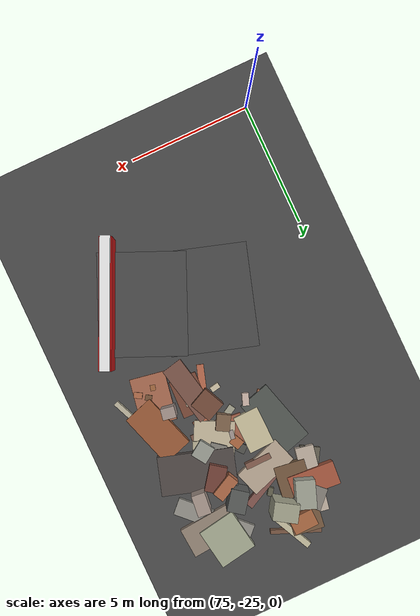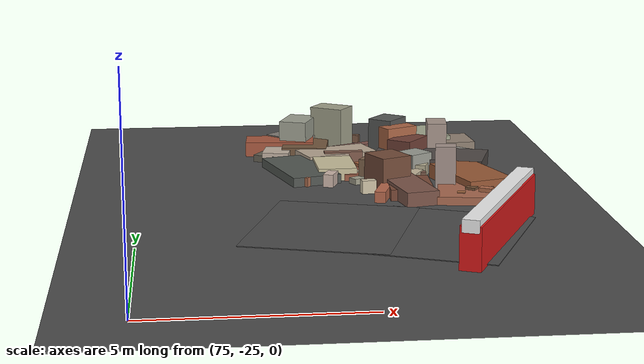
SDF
<sdf version="1.6">
 <world name="navitas_arena">
  <model name="ground_plane">
   <static>true</static>
   <link name="link">
    <collision name="collision">
     <geometry><plane><normal>0 0 1</normal><size>400 400</size></plane></geometry>
     <surface><friction><ode><mu>0.800</mu><mu2>0.800</mu2></ode></friction></surface>
    </collision>
    <visual name="visual">
     <cast_shadows>false</cast_shadows>
     <geometry><plane><normal>0 0 1</normal><size>400 400</size></plane></geometry>
     <material>
      <specular>0.04 0.04 0.04 1</specular>
      <script>
       <uri>file://media/materials/scripts/navitas_asphalt.material</uri>
       <name>Navitas/RealArenaAsphalt</name>
      </script>
     </material>
    </visual>
   </link>
  </model>
  <model name="road_zor_1_2">
   <static>true</static>
   <pose>82.078 -19.642 0.040 0 0 2.727</pose>
   <link name="link">
    <collision name="col"><geometry><box><size>3.580 4.200 0.020</size></box></geometry></collision>
    <visual name="vis">
     <geometry><box><size>3.580 4.200 0.020</size></box></geometry>
     <material>
      <specular>0.04 0.04 0.04 1</specular>
      <script>
       <uri>file://media/materials/scripts/navitas_asphalt.material</uri>
       <name>Navitas/RealArenaAsphalt</name>
      </script>
     </material>
    </visual>
   </link>
  </model>
  <model name="road_zor_1_3">
   <static>true</static>
   <pose>79.591 -18.702 0.040 0 0 2.835</pose>
   <link name="link">
    <collision name="col"><geometry><box><size>3.546 4.200 0.020</size></box></geometry></collision>
    <visual name="vis">
     <geometry><box><size>3.546 4.200 0.020</size></box></geometry>
     <material>
      <specular>0.04 0.04 0.04 1</specular>
      <script>
       <uri>file://media/materials/scripts/navitas_asphalt.material</uri>
       <name>Navitas/RealArenaAsphalt</name>
      </script>
     </material>
    </visual>
   </link>
  </model>
  <model name="bar_zor_1">
   <static>true</static>
   <pose>83.305 -20.182 0.500 0 0 4.271</pose>
   <link name="link">
    <collision name="col"><geometry><box><size>5.200 0.500 1.000</size></box></geometry></collision>
    <visual name="vis">
     <geometry><box><size>5.200 0.500 1.000</size></box></geometry>
     <material>
      <ambient>0.85 0.10 0.10 1</ambient>
      <diffuse>0.85 0.10 0.10 1</diffuse>
      <specular>0.04 0.04 0.04 1</specular>
     </material>
    </visual>
   </link>
  </model>
  <model name="bar_zor_1b">
   <static>true</static>
   <pose>83.305 -20.182 1.000 0 0 4.271</pose>
   <link name="link">
    <collision name="col"><geometry><box><size>5.200 0.400 0.300</size></box></geometry></collision>
    <visual name="vis">
     <geometry><box><size>5.200 0.400 0.300</size></box></geometry>
     <material>
      <ambient>0.95 0.95 0.95 1</ambient>
      <diffuse>0.95 0.95 0.95 1</diffuse>
      <specular>0.04 0.04 0.04 1</specular>
     </material>
    </visual>
   </link>
  </model>
  <model name="deb_zor_33">
   <static>true</static>
   <pose>82.163 -13.791 0.000 0 0 0</pose>
   <link name="link">
    <collision name="col_0">
     <pose>0.242 0.244 0.147 0.000 0.000 4.209</pose>
     <geometry><box><size>0.437 0.273 0.293</size></box></geometry>
    </collision>
    <visual name="vis_0">
     <pose>0.242 0.244 0.147 0.000 0.000 4.209</pose>
     <geometry><box><size>0.437 0.273 0.293</size></box></geometry>
     <material>
      <ambient>0.61 0.60 0.54 1</ambient>
      <diffuse>0.65 0.65 0.59 1</diffuse>
      <specular>0.05 0.05 0.045 1</specular>
     </material>
    </visual>
    <collision name="col_1">
     <pose>0.181 0.432 0.295 0.000 0.000 3.725</pose>
     <geometry><box><size>0.690 0.653 0.590</size></box></geometry>
    </collision>
    <visual name="vis_1">
     <pose>0.181 0.432 0.295 0.000 0.000 3.725</pose>
     <geometry><box><size>0.690 0.653 0.590</size></box></geometry>
     <material>
      <ambient>0.57 0.57 0.54 1</ambient>
      <diffuse>0.61 0.62 0.58 1</diffuse>
      <specular>0.05 0.05 0.045 1</specular>
     </material>
    </visual>
    <collision name="col_2">
     <pose>-0.437 -0.138 0.091 0.000 0.000 3.099</pose>
     <geometry><box><size>1.694 0.242 0.182</size></box></geometry>
    </collision>
    <visual name="vis_2">
     <pose>-0.437 -0.138 0.091 0.000 0.000 3.099</pose>
     <geometry><box><size>1.694 0.242 0.182</size></box></geometry>
     <material>
      <ambient>0.44 0.32 0.27 1</ambient>
      <diffuse>0.48 0.35 0.29 1</diffuse>
      <specular>0.05 0.05 0.045 1</specular>
     </material>
    </visual>
    <collision name="col_3">
     <pose>-0.390 0.250 0.108 0.000 0.000 2.684</pose>
     <geometry><box><size>1.627 1.511 0.216</size></box></geometry>
    </collision>
    <visual name="vis_3">
     <pose>-0.390 0.250 0.108 0.000 0.000 2.684</pose>
     <geometry><box><size>1.627 1.511 0.216</size></box></geometry>
     <material>
      <ambient>0.72 0.68 0.57 1</ambient>
      <diffuse>0.78 0.73 0.62 1</diffuse>
      <specular>0.05 0.05 0.045 1</specular>
     </material>
    </visual>
    <collision name="col_4">
     <pose>-0.032 -0.541 0.061 0.000 0.000 3.361</pose>
     <geometry><box><size>0.202 0.416 0.121</size></box></geometry>
    </collision>
    <visual name="vis_4">
     <pose>-0.032 -0.541 0.061 0.000 0.000 3.361</pose>
     <geometry><box><size>0.202 0.416 0.121</size></box></geometry>
     <material>
      <ambient>0.48 0.32 0.24 1</ambient>
      <diffuse>0.52 0.34 0.26 1</diffuse>
      <specular>0.05 0.05 0.045 1</specular>
     </material>
    </visual>
    <collision name="col_5">
     <pose>0.278 0.221 0.157 0.000 0.000 4.347</pose>
     <geometry><box><size>0.461 0.464 0.314</size></box></geometry>
    </collision>
    <visual name="vis_5">
     <pose>0.278 0.221 0.157 0.000 0.000 4.347</pose>
     <geometry><box><size>0.461 0.464 0.314</size></box></geometry>
     <material>
      <ambient>0.66 0.64 0.54 1</ambient>
      <diffuse>0.72 0.69 0.58 1</diffuse>
      <specular>0.05 0.05 0.045 1</specular>
     </material>
    </visual>
   </link>
  </model>
  <model name="deb_zor_73">
   <static>true</static>
   <pose>81.459 -15.122 0.000 0 0 0</pose>
   <link name="link">
    <collision name="col_0">
     <pose>-0.055 0.128 0.458 0.000 0.000 0.433</pose>
     <geometry><box><size>0.851 0.920 0.916</size></box></geometry>
    </collision>
    <visual name="vis_0">
     <pose>-0.055 0.128 0.458 0.000 0.000 0.433</pose>
     <geometry><box><size>0.851 0.920 0.916</size></box></geometry>
     <material>
      <ambient>0.42 0.28 0.21 1</ambient>
      <diffuse>0.46 0.30 0.23 1</diffuse>
      <specular>0.05 0.05 0.045 1</specular>
     </material>
    </visual>
    <collision name="col_1">
     <pose>-0.606 -0.301 0.173 0.000 0.000 1.752</pose>
     <geometry><box><size>0.213 0.374 0.345</size></box></geometry>
    </collision>
    <visual name="vis_1">
     <pose>-0.606 -0.301 0.173 0.000 0.000 1.752</pose>
     <geometry><box><size>0.213 0.374 0.345</size></box></geometry>
     <material>
      <ambient>0.76 0.71 0.61 1</ambient>
      <diffuse>0.82 0.77 0.66 1</diffuse>
      <specular>0.05 0.05 0.045 1</specular>
     </material>
    </visual>
    <collision name="col_2">
     <pose>0.615 -0.238 0.170 0.000 0.000 2.980</pose>
     <geometry><box><size>0.185 0.352 0.340</size></box></geometry>
    </collision>
    <visual name="vis_2">
     <pose>0.615 -0.238 0.170 0.000 0.000 2.980</pose>
     <geometry><box><size>0.185 0.352 0.340</size></box></geometry>
     <material>
      <ambient>0.71 0.65 0.57 1</ambient>
      <diffuse>0.77 0.70 0.61 1</diffuse>
      <specular>0.05 0.05 0.045 1</specular>
     </material>
    </visual>
    <collision name="col_3">
     <pose>0.442 -0.457 0.144 0.000 0.000 1.536</pose>
     <geometry><box><size>1.533 1.117 0.288</size></box></geometry>
    </collision>
    <visual name="vis_3">
     <pose>0.442 -0.457 0.144 0.000 0.000 1.536</pose>
     <geometry><box><size>1.533 1.117 0.288</size></box></geometry>
     <material>
      <ambient>0.44 0.27 0.20 1</ambient>
      <diffuse>0.48 0.29 0.22 1</diffuse>
      <specular>0.05 0.05 0.045 1</specular>
     </material>
    </visual>
    <collision name="col_4">
     <pose>-0.103 -0.313 0.143 0.000 0.000 1.261</pose>
     <geometry><box><size>2.238 0.283 0.285</size></box></geometry>
    </collision>
    <visual name="vis_4">
     <pose>-0.103 -0.313 0.143 0.000 0.000 1.261</pose>
     <geometry><box><size>2.238 0.283 0.285</size></box></geometry>
     <material>
      <ambient>0.67 0.39 0.29 1</ambient>
      <diffuse>0.73 0.42 0.31 1</diffuse>
      <specular>0.05 0.05 0.045 1</specular>
     </material>
    </visual>
    <collision name="col_5">
     <pose>0.337 -0.610 0.186 0.000 0.000 1.780</pose>
     <geometry><box><size>2.469 0.855 0.372</size></box></geometry>
    </collision>
    <visual name="vis_5">
     <pose>0.337 -0.610 0.186 0.000 0.000 1.780</pose>
     <geometry><box><size>2.469 0.855 0.372</size></box></geometry>
     <material>
      <ambient>0.45 0.32 0.27 1</ambient>
      <diffuse>0.49 0.34 0.29 1</diffuse>
      <specular>0.05 0.05 0.045 1</specular>
     </material>
    </visual>
   </link>
  </model>
  <model name="deb_zor_75">
   <static>true</static>
   <pose>79.167 -10.018 0.000 0 0 0</pose>
   <link name="link">
    <collision name="col_0">
     <pose>0.386 -0.243 0.164 0.000 0.000 1.057</pose>
     <geometry><box><size>1.870 0.299 0.328</size></box></geometry>
    </collision>
    <visual name="vis_0">
     <pose>0.386 -0.243 0.164 0.000 0.000 1.057</pose>
     <geometry><box><size>1.870 0.299 0.328</size></box></geometry>
     <material>
      <ambient>0.39 0.36 0.36 1</ambient>
      <diffuse>0.42 0.38 0.39 1</diffuse>
      <specular>0.05 0.05 0.045 1</specular>
     </material>
    </visual>
    <collision name="col_1">
     <pose>-0.252 -0.498 0.144 0.000 0.000 1.380</pose>
     <geometry><box><size>2.640 0.740 0.288</size></box></geometry>
    </collision>
    <visual name="vis_1">
     <pose>-0.252 -0.498 0.144 0.000 0.000 1.380</pose>
     <geometry><box><size>2.640 0.740 0.288</size></box></geometry>
     <material>
      <ambient>0.70 0.64 0.58 1</ambient>
      <diffuse>0.75 0.69 0.63 1</diffuse>
      <specular>0.05 0.05 0.045 1</specular>
     </material>
    </visual>
    <collision name="col_2">
     <pose>0.091 0.005 0.217 0.000 0.000 2.367</pose>
     <geometry><box><size>1.149 0.900 0.435</size></box></geometry>
    </collision>
    <visual name="vis_2">
     <pose>0.091 0.005 0.217 0.000 0.000 2.367</pose>
     <geometry><box><size>1.149 0.900 0.435</size></box></geometry>
     <material>
      <ambient>0.48 0.46 0.43 1</ambient>
      <diffuse>0.52 0.50 0.47 1</diffuse>
      <specular>0.05 0.05 0.045 1</specular>
     </material>
    </visual>
    <collision name="col_3">
     <pose>0.524 -0.075 0.170 0.000 0.000 1.431</pose>
     <geometry><box><size>2.798 1.251 0.341</size></box></geometry>
    </collision>
    <visual name="vis_3">
     <pose>0.524 -0.075 0.170 0.000 0.000 1.431</pose>
     <geometry><box><size>2.798 1.251 0.341</size></box></geometry>
     <material>
      <ambient>0.42 0.33 0.24 1</ambient>
      <diffuse>0.46 0.35 0.25 1</diffuse>
      <specular>0.05 0.05 0.045 1</specular>
     </material>
    </visual>
    <collision name="col_4">
     <pose>0.256 -0.238 0.475 0.000 0.000 1.209</pose>
     <geometry><box><size>1.131 0.774 0.950</size></box></geometry>
    </collision>
    <visual name="vis_4">
     <pose>0.256 -0.238 0.475 0.000 0.000 1.209</pose>
     <geometry><box><size>1.131 0.774 0.950</size></box></geometry>
     <material>
      <ambient>0.58 0.59 0.54 1</ambient>
      <diffuse>0.63 0.64 0.58 1</diffuse>
      <specular>0.05 0.05 0.045 1</specular>
     </material>
    </visual>
    <collision name="col_5">
     <pose>-0.286 -0.445 0.200 0.000 0.000 -0.081</pose>
     <geometry><box><size>1.915 0.929 0.401</size></box></geometry>
    </collision>
    <visual name="vis_5">
     <pose>-0.286 -0.445 0.200 0.000 0.000 -0.081</pose>
     <geometry><box><size>1.915 0.929 0.401</size></box></geometry>
     <material>
      <ambient>0.61 0.32 0.23 1</ambient>
      <diffuse>0.66 0.35 0.25 1</diffuse>
      <specular>0.05 0.05 0.045 1</specular>
     </material>
    </visual>
   </link>
  </model>
  <model name="deb_zor_122">
   <static>true</static>
   <pose>81.073 -11.390 0.000 0 0 0</pose>
   <link name="link">
    <collision name="col_0">
     <pose>-0.698 -0.345 0.160 0.000 0.000 0.323</pose>
     <geometry><box><size>2.041 1.064 0.319</size></box></geometry>
    </collision>
    <visual name="vis_0">
     <pose>-0.698 -0.345 0.160 0.000 0.000 0.323</pose>
     <geometry><box><size>2.041 1.064 0.319</size></box></geometry>
     <material>
      <ambient>0.68 0.62 0.54 1</ambient>
      <diffuse>0.73 0.66 0.58 1</diffuse>
      <specular>0.05 0.05 0.045 1</specular>
     </material>
    </visual>
    <collision name="col_1">
     <pose>-0.525 -0.685 0.182 0.000 0.000 0.012</pose>
     <geometry><box><size>1.062 0.231 0.365</size></box></geometry>
    </collision>
    <visual name="vis_1">
     <pose>-0.525 -0.685 0.182 0.000 0.000 0.012</pose>
     <geometry><box><size>1.062 0.231 0.365</size></box></geometry>
     <material>
      <ambient>0.48 0.35 0.29 1</ambient>
      <diffuse>0.52 0.37 0.31 1</diffuse>
      <specular>0.05 0.05 0.045 1</specular>
     </material>
    </visual>
    <collision name="col_2">
     <pose>0.164 -0.283 0.068 0.000 0.000 -0.279</pose>
     <geometry><box><size>0.305 0.285 0.137</size></box></geometry>
    </collision>
    <visual name="vis_2">
     <pose>0.164 -0.283 0.068 0.000 0.000 -0.279</pose>
     <geometry><box><size>0.305 0.285 0.137</size></box></geometry>
     <material>
      <ambient>0.70 0.65 0.56 1</ambient>
      <diffuse>0.76 0.71 0.61 1</diffuse>
      <specular>0.05 0.05 0.045 1</specular>
     </material>
    </visual>
    <collision name="col_3">
     <pose>-0.338 0.339 0.150 0.000 0.000 0.460</pose>
     <geometry><box><size>1.986 0.309 0.301</size></box></geometry>
    </collision>
    <visual name="vis_3">
     <pose>-0.338 0.339 0.150 0.000 0.000 0.460</pose>
     <geometry><box><size>1.986 0.309 0.301</size></box></geometry>
     <material>
      <ambient>0.47 0.32 0.29 1</ambient>
      <diffuse>0.51 0.34 0.31 1</diffuse>
      <specular>0.05 0.05 0.045 1</specular>
     </material>
    </visual>
    <collision name="col_4">
     <pose>0.800 -0.330 0.142 0.000 0.000 1.362</pose>
     <geometry><box><size>2.300 0.251 0.284</size></box></geometry>
    </collision>
    <visual name="vis_4">
     <pose>0.800 -0.330 0.142 0.000 0.000 1.362</pose>
     <geometry><box><size>2.300 0.251 0.284</size></box></geometry>
     <material>
      <ambient>0.60 0.56 0.53 1</ambient>
      <diffuse>0.65 0.61 0.57 1</diffuse>
      <specular>0.05 0.05 0.045 1</specular>
     </material>
    </visual>
    <collision name="col_5">
     <pose>-0.186 0.025 0.071 0.000 0.000 1.191</pose>
     <geometry><box><size>0.519 0.294 0.142</size></box></geometry>
    </collision>
    <visual name="vis_5">
     <pose>-0.186 0.025 0.071 0.000 0.000 1.191</pose>
     <geometry><box><size>0.519 0.294 0.142</size></box></geometry>
     <material>
      <ambient>0.59 0.34 0.23 1</ambient>
      <diffuse>0.63 0.36 0.24 1</diffuse>
      <specular>0.05 0.05 0.045 1</specular>
     </material>
    </visual>
    <collision name="col_6">
     <pose>-0.457 0.655 0.110 0.000 0.000 0.938</pose>
     <geometry><box><size>0.340 0.207 0.220</size></box></geometry>
    </collision>
    <visual name="vis_6">
     <pose>-0.457 0.655 0.110 0.000 0.000 0.938</pose>
     <geometry><box><size>0.340 0.207 0.220</size></box></geometry>
     <material>
      <ambient>0.36 0.35 0.29 1</ambient>
      <diffuse>0.39 0.38 0.31 1</diffuse>
      <specular>0.05 0.05 0.045 1</specular>
     </material>
    </visual>
   </link>
  </model>
  <model name="deb_zor_152">
   <static>true</static>
   <pose>80.755 -13.940 0.000 0 0 0</pose>
   <link name="link">
    <collision name="col_0">
     <pose>0.389 -0.123 0.308 0.000 0.000 1.045</pose>
     <geometry><box><size>0.656 0.557 0.615</size></box></geometry>
    </collision>
    <visual name="vis_0">
     <pose>0.389 -0.123 0.308 0.000 0.000 1.045</pose>
     <geometry><box><size>0.656 0.557 0.615</size></box></geometry>
     <material>
      <ambient>0.47 0.36 0.27 1</ambient>
      <diffuse>0.50 0.39 0.30 1</diffuse>
      <specular>0.05 0.05 0.045 1</specular>
     </material>
    </visual>
    <collision name="col_1">
     <pose>-0.043 -0.406 0.077 0.000 0.000 2.098</pose>
     <geometry><box><size>0.279 0.384 0.155</size></box></geometry>
    </collision>
    <visual name="vis_1">
     <pose>-0.043 -0.406 0.077 0.000 0.000 2.098</pose>
     <geometry><box><size>0.279 0.384 0.155</size></box></geometry>
     <material>
      <ambient>0.61 0.59 0.52 1</ambient>
      <diffuse>0.65 0.64 0.56 1</diffuse>
      <specular>0.05 0.05 0.045 1</specular>
     </material>
    </visual>
    <collision name="col_2">
     <pose>0.288 0.492 0.141 0.000 0.000 1.433</pose>
     <geometry><box><size>0.361 0.182 0.281</size></box></geometry>
    </collision>
    <visual name="vis_2">
     <pose>0.288 0.492 0.141 0.000 0.000 1.433</pose>
     <geometry><box><size>0.361 0.182 0.281</size></box></geometry>
     <material>
      <ambient>0.60 0.54 0.53 1</ambient>
      <diffuse>0.64 0.59 0.57 1</diffuse>
      <specular>0.05 0.05 0.045 1</specular>
     </material>
    </visual>
    <collision name="col_3">
     <pose>0.580 0.324 0.088 0.000 0.000 3.022</pose>
     <geometry><box><size>1.782 1.160 0.176</size></box></geometry>
    </collision>
    <visual name="vis_3">
     <pose>0.580 0.324 0.088 0.000 0.000 3.022</pose>
     <geometry><box><size>1.782 1.160 0.176</size></box></geometry>
     <material>
      <ambient>0.59 0.36 0.27 1</ambient>
      <diffuse>0.64 0.38 0.29 1</diffuse>
      <specular>0.05 0.05 0.045 1</specular>
     </material>
    </visual>
   </link>
  </model>
  <model name="deb_zor_196">
   <static>true</static>
   <pose>83.380 -15.861 0.000 0 0 0</pose>
   <link name="link">
    <collision name="col_0">
     <pose>-0.509 0.497 0.596 0.000 0.000 2.965</pose>
     <geometry><box><size>0.535 0.438 1.192</size></box></geometry>
    </collision>
    <visual name="vis_0">
     <pose>-0.509 0.497 0.596 0.000 0.000 2.965</pose>
     <geometry><box><size>0.535 0.438 1.192</size></box></geometry>
     <material>
      <ambient>0.60 0.54 0.51 1</ambient>
      <diffuse>0.65 0.58 0.55 1</diffuse>
      <specular>0.05 0.05 0.045 1</specular>
     </material>
    </visual>
    <collision name="col_1">
     <pose>-0.286 -0.593 0.114 0.000 0.000 1.315</pose>
     <geometry><box><size>0.231 0.207 0.228</size></box></geometry>
    </collision>
    <visual name="vis_1">
     <pose>-0.286 -0.593 0.114 0.000 0.000 1.315</pose>
     <geometry><box><size>0.231 0.207 0.228</size></box></geometry>
     <material>
      <ambient>0.59 0.38 0.24 1</ambient>
      <diffuse>0.64 0.41 0.25 1</diffuse>
      <specular>0.05 0.05 0.045 1</specular>
     </material>
    </visual>
    <collision name="col_2">
     <pose>0.364 -0.569 0.158 0.000 0.000 1.039</pose>
     <geometry><box><size>0.236 0.344 0.316</size></box></geometry>
    </collision>
    <visual name="vis_2">
     <pose>0.364 -0.569 0.158 0.000 0.000 1.039</pose>
     <geometry><box><size>0.236 0.344 0.316</size></box></geometry>
     <material>
      <ambient>0.65 0.40 0.28 1</ambient>
      <diffuse>0.70 0.43 0.30 1</diffuse>
      <specular>0.05 0.05 0.045 1</specular>
     </material>
    </visual>
    <collision name="col_3">
     <pose>0.869 0.363 0.133 0.000 0.000 1.968</pose>
     <geometry><box><size>2.221 0.204 0.265</size></box></geometry>
    </collision>
    <visual name="vis_3">
     <pose>0.869 0.363 0.133 0.000 0.000 1.968</pose>
     <geometry><box><size>2.221 0.204 0.265</size></box></geometry>
     <material>
      <ambient>0.70 0.66 0.58 1</ambient>
      <diffuse>0.75 0.72 0.63 1</diffuse>
      <specular>0.05 0.05 0.045 1</specular>
     </material>
    </visual>
    <collision name="col_4">
     <pose>-0.098 -0.164 0.107 0.000 0.000 1.394</pose>
     <geometry><box><size>1.971 1.432 0.213</size></box></geometry>
    </collision>
    <visual name="vis_4">
     <pose>-0.098 -0.164 0.107 0.000 0.000 1.394</pose>
     <geometry><box><size>1.971 1.432 0.213</size></box></geometry>
     <material>
      <ambient>0.62 0.39 0.30 1</ambient>
      <diffuse>0.67 0.42 0.32 1</diffuse>
      <specular>0.05 0.05 0.045 1</specular>
     </material>
    </visual>
    <collision name="col_5">
     <pose>0.250 1.031 0.194 0.000 0.000 1.884</pose>
     <geometry><box><size>2.303 1.257 0.388</size></box></geometry>
    </collision>
    <visual name="vis_5">
     <pose>0.250 1.031 0.194 0.000 0.000 1.884</pose>
     <geometry><box><size>2.303 1.257 0.388</size></box></geometry>
     <material>
      <ambient>0.56 0.33 0.20 1</ambient>
      <diffuse>0.61 0.36 0.22 1</diffuse>
      <specular>0.05 0.05 0.045 1</specular>
     </material>
    </visual>
    <collision name="col_6">
     <pose>0.030 -0.307 0.138 0.000 0.000 0.979</pose>
     <geometry><box><size>0.225 0.270 0.276</size></box></geometry>
    </collision>
    <visual name="vis_6">
     <pose>0.030 -0.307 0.138 0.000 0.000 0.979</pose>
     <geometry><box><size>0.225 0.270 0.276</size></box></geometry>
     <material>
      <ambient>0.44 0.31 0.21 1</ambient>
      <diffuse>0.47 0.33 0.22 1</diffuse>
      <specular>0.05 0.05 0.045 1</specular>
     </material>
    </visual>
   </link>
  </model>
  <model name="deb_zor_197">
   <static>true</static>
   <pose>79.930 -13.820 0.000 0 0 0</pose>
   <link name="link">
    <collision name="col_0">
     <pose>0.031 -0.669 0.168 0.000 0.000 1.211</pose>
     <geometry><box><size>0.506 0.265 0.337</size></box></geometry>
    </collision>
    <visual name="vis_0">
     <pose>0.031 -0.669 0.168 0.000 0.000 1.211</pose>
     <geometry><box><size>0.506 0.265 0.337</size></box></geometry>
     <material>
      <ambient>0.75 0.67 0.62 1</ambient>
      <diffuse>0.81 0.72 0.67 1</diffuse>
      <specular>0.05 0.05 0.045 1</specular>
     </material>
    </visual>
    <collision name="col_1">
     <pose>1.069 0.726 0.127 0.000 0.000 0.445</pose>
     <geometry><box><size>0.397 0.454 0.255</size></box></geometry>
    </collision>
    <visual name="vis_1">
     <pose>1.069 0.726 0.127 0.000 0.000 0.445</pose>
     <geometry><box><size>0.397 0.454 0.255</size></box></geometry>
     <material>
      <ambient>0.63 0.38 0.24 1</ambient>
      <diffuse>0.68 0.41 0.26 1</diffuse>
      <specular>0.05 0.05 0.045 1</specular>
     </material>
    </visual>
    <collision name="col_2">
     <pose>-0.663 0.572 0.123 0.000 0.000 1.847</pose>
     <geometry><box><size>2.564 1.324 0.246</size></box></geometry>
    </collision>
    <visual name="vis_2">
     <pose>-0.663 0.572 0.123 0.000 0.000 1.847</pose>
     <geometry><box><size>2.564 1.324 0.246</size></box></geometry>
     <material>
      <ambient>0.30 0.32 0.30 1</ambient>
      <diffuse>0.33 0.35 0.33 1</diffuse>
      <specular>0.05 0.05 0.045 1</specular>
     </material>
    </visual>
    <collision name="col_3">
     <pose>-0.592 -0.565 0.122 0.000 0.000 2.456</pose>
     <geometry><box><size>0.337 0.398 0.244</size></box></geometry>
    </collision>
    <visual name="vis_3">
     <pose>-0.592 -0.565 0.122 0.000 0.000 2.456</pose>
     <geometry><box><size>0.337 0.398 0.244</size></box></geometry>
     <material>
      <ambient>0.64 0.40 0.30 1</ambient>
      <diffuse>0.69 0.44 0.32 1</diffuse>
      <specular>0.05 0.05 0.045 1</specular>
     </material>
    </visual>
    <collision name="col_4">
     <pose>-0.718 0.463 0.086 0.000 0.000 0.661</pose>
     <geometry><box><size>0.279 0.307 0.173</size></box></geometry>
    </collision>
    <visual name="vis_4">
     <pose>-0.718 0.463 0.086 0.000 0.000 0.661</pose>
     <geometry><box><size>0.279 0.307 0.173</size></box></geometry>
     <material>
      <ambient>0.60 0.31 0.23 1</ambient>
      <diffuse>0.65 0.34 0.24 1</diffuse>
      <specular>0.05 0.05 0.045 1</specular>
     </material>
    </visual>
   </link>
  </model>
  <model name="deb_zor_206">
   <static>true</static>
   <pose>80.351 -10.160 0.000 0 0 0</pose>
   <link name="link">
    <collision name="col_0">
     <pose>-1.184 -0.296 0.094 0.000 0.000 1.033</pose>
     <geometry><box><size>2.898 0.805 0.188</size></box></geometry>
    </collision>
    <visual name="vis_0">
     <pose>-1.184 -0.296 0.094 0.000 0.000 1.033</pose>
     <geometry><box><size>2.898 0.805 0.188</size></box></geometry>
     <material>
      <ambient>0.37 0.35 0.30 1</ambient>
      <diffuse>0.40 0.38 0.33 1</diffuse>
      <specular>0.05 0.05 0.045 1</specular>
     </material>
    </visual>
    <collision name="col_1">
     <pose>-1.086 -0.281 0.065 0.000 0.000 0.699</pose>
     <geometry><box><size>1.807 0.179 0.130</size></box></geometry>
    </collision>
    <visual name="vis_1">
     <pose>-1.086 -0.281 0.065 0.000 0.000 0.699</pose>
     <geometry><box><size>1.807 0.179 0.130</size></box></geometry>
     <material>
      <ambient>0.62 0.36 0.26 1</ambient>
      <diffuse>0.67 0.38 0.28 1</diffuse>
      <specular>0.05 0.05 0.045 1</specular>
     </material>
    </visual>
    <collision name="col_2">
     <pose>0.177 1.142 0.144 0.000 0.000 -1.123</pose>
     <geometry><box><size>1.851 0.246 0.289</size></box></geometry>
    </collision>
    <visual name="vis_2">
     <pose>0.177 1.142 0.144 0.000 0.000 -1.123</pose>
     <geometry><box><size>1.851 0.246 0.289</size></box></geometry>
     <material>
      <ambient>0.72 0.69 0.59 1</ambient>
      <diffuse>0.78 0.75 0.63 1</diffuse>
      <specular>0.05 0.05 0.045 1</specular>
     </material>
    </visual>
    <collision name="col_3">
     <pose>0.009 1.257 0.110 0.000 0.000 -0.393</pose>
     <geometry><box><size>2.028 0.166 0.221</size></box></geometry>
    </collision>
    <visual name="vis_3">
     <pose>0.009 1.257 0.110 0.000 0.000 -0.393</pose>
     <geometry><box><size>2.028 0.166 0.221</size></box></geometry>
     <material>
      <ambient>0.44 0.32 0.24 1</ambient>
      <diffuse>0.47 0.34 0.26 1</diffuse>
      <specular>0.05 0.05 0.045 1</specular>
     </material>
    </visual>
    <collision name="col_4">
     <pose>0.058 0.114 0.622 0.000 0.000 -0.573</pose>
     <geometry><box><size>0.981 0.722 1.243</size></box></geometry>
    </collision>
    <visual name="vis_4">
     <pose>0.058 0.114 0.622 0.000 0.000 -0.573</pose>
     <geometry><box><size>0.981 0.722 1.243</size></box></geometry>
     <material>
      <ambient>0.59 0.59 0.51 1</ambient>
      <diffuse>0.64 0.64 0.55 1</diffuse>
      <specular>0.05 0.05 0.045 1</specular>
     </material>
    </visual>
    <collision name="col_5">
     <pose>-0.913 0.602 0.146 0.000 0.000 -0.834</pose>
     <geometry><box><size>0.478 0.476 0.292</size></box></geometry>
    </collision>
    <visual name="vis_5">
     <pose>-0.913 0.602 0.146 0.000 0.000 -0.834</pose>
     <geometry><box><size>0.478 0.476 0.292</size></box></geometry>
     <material>
      <ambient>0.35 0.31 0.31 1</ambient>
      <diffuse>0.38 0.34 0.34 1</diffuse>
      <specular>0.05 0.05 0.045 1</specular>
     </material>
    </visual>
    <collision name="col_6">
     <pose>-0.405 0.907 0.343 0.000 0.000 0.029</pose>
     <geometry><box><size>0.982 0.641 0.687</size></box></geometry>
    </collision>
    <visual name="vis_6">
     <pose>-0.405 0.907 0.343 0.000 0.000 0.029</pose>
     <geometry><box><size>0.982 0.641 0.687</size></box></geometry>
     <material>
      <ambient>0.62 0.38 0.24 1</ambient>
      <diffuse>0.67 0.41 0.26 1</diffuse>
      <specular>0.05 0.05 0.045 1</specular>
     </material>
    </visual>
   </link>
  </model>
  <model name="deb_zor_275">
   <static>true</static>
   <pose>80.310 -12.988 0.000 0 0 0</pose>
   <link name="link">
    <collision name="col_0">
     <pose>0.000 -0.750 0.084 0.000 0.000 2.757</pose>
     <geometry><box><size>1.975 0.302 0.168</size></box></geometry>
    </collision>
    <visual name="vis_0">
     <pose>0.000 -0.750 0.084 0.000 0.000 2.757</pose>
     <geometry><box><size>1.975 0.302 0.168</size></box></geometry>
     <material>
      <ambient>0.56 0.54 0.45 1</ambient>
      <diffuse>0.60 0.58 0.49 1</diffuse>
      <specular>0.05 0.05 0.045 1</specular>
     </material>
    </visual>
    <collision name="col_1">
     <pose>-0.123 -0.267 0.162 0.000 0.000 1.593</pose>
     <geometry><box><size>1.528 1.032 0.325</size></box></geometry>
    </collision>
    <visual name="vis_1">
     <pose>-0.123 -0.267 0.162 0.000 0.000 1.593</pose>
     <geometry><box><size>1.528 1.032 0.325</size></box></geometry>
     <material>
      <ambient>0.74 0.71 0.58 1</ambient>
      <diffuse>0.80 0.76 0.62 1</diffuse>
      <specular>0.05 0.05 0.045 1</specular>
     </material>
    </visual>
    <collision name="col_2">
     <pose>-0.076 0.001 0.132 0.000 0.000 1.004</pose>
     <geometry><box><size>1.057 0.252 0.264</size></box></geometry>
    </collision>
    <visual name="vis_2">
     <pose>-0.076 0.001 0.132 0.000 0.000 1.004</pose>
     <geometry><box><size>1.057 0.252 0.264</size></box></geometry>
     <material>
      <ambient>0.31 0.30 0.30 1</ambient>
      <diffuse>0.34 0.32 0.32 1</diffuse>
      <specular>0.05 0.05 0.045 1</specular>
     </material>
    </visual>
    <collision name="col_3">
     <pose>0.632 0.186 0.077 0.000 0.000 2.269</pose>
     <geometry><box><size>0.421 0.365 0.154</size></box></geometry>
    </collision>
    <visual name="vis_3">
     <pose>0.632 0.186 0.077 0.000 0.000 2.269</pose>
     <geometry><box><size>0.421 0.365 0.154</size></box></geometry>
     <material>
      <ambient>0.29 0.29 0.28 1</ambient>
      <diffuse>0.32 0.32 0.30 1</diffuse>
      <specular>0.05 0.05 0.045 1</specular>
     </material>
    </visual>
   </link>
  </model>
  <model name="deb_zor_294">
   <static>true</static>
   <pose>82.385 -12.243 0.000 0 0 0</pose>
   <link name="link">
    <collision name="col_0">
     <pose>-0.491 1.083 0.554 0.000 0.000 2.490</pose>
     <geometry><box><size>0.710 0.881 1.109</size></box></geometry>
    </collision>
    <visual name="vis_0">
     <pose>-0.491 1.083 0.554 0.000 0.000 2.490</pose>
     <geometry><box><size>0.710 0.881 1.109</size></box></geometry>
     <material>
      <ambient>0.32 0.33 0.32 1</ambient>
      <diffuse>0.35 0.36 0.35 1</diffuse>
      <specular>0.05 0.05 0.045 1</specular>
     </material>
    </visual>
    <collision name="col_1">
     <pose>0.503 -0.468 0.194 0.000 0.000 2.839</pose>
     <geometry><box><size>3.040 1.551 0.389</size></box></geometry>
    </collision>
    <visual name="vis_1">
     <pose>0.503 -0.468 0.194 0.000 0.000 2.839</pose>
     <geometry><box><size>3.040 1.551 0.389</size></box></geometry>
     <material>
      <ambient>0.30 0.27 0.26 1</ambient>
      <diffuse>0.32 0.29 0.28 1</diffuse>
      <specular>0.05 0.05 0.045 1</specular>
     </material>
    </visual>
    <collision name="col_2">
     <pose>-0.052 0.031 0.371 0.000 0.000 4.071</pose>
     <geometry><box><size>1.058 0.700 0.741</size></box></geometry>
    </collision>
    <visual name="vis_2">
     <pose>-0.052 0.031 0.371 0.000 0.000 4.071</pose>
     <geometry><box><size>1.058 0.700 0.741</size></box></geometry>
     <material>
      <ambient>0.42 0.24 0.20 1</ambient>
      <diffuse>0.45 0.26 0.22 1</diffuse>
      <specular>0.05 0.05 0.045 1</specular>
     </material>
    </visual>
    <collision name="col_3">
     <pose>0.839 0.598 0.539 0.000 0.000 3.039</pose>
     <geometry><box><size>0.534 0.841 1.077</size></box></geometry>
    </collision>
    <visual name="vis_3">
     <pose>0.839 0.598 0.539 0.000 0.000 3.039</pose>
     <geometry><box><size>0.534 0.841 1.077</size></box></geometry>
     <material>
      <ambient>0.61 0.55 0.51 1</ambient>
      <diffuse>0.66 0.59 0.55 1</diffuse>
      <specular>0.05 0.05 0.045 1</specular>
     </material>
    </visual>
    <collision name="col_4">
     <pose>-0.453 -0.734 0.175 0.000 0.000 2.469</pose>
     <geometry><box><size>0.656 0.903 0.351</size></box></geometry>
    </collision>
    <visual name="vis_4">
     <pose>-0.453 -0.734 0.175 0.000 0.000 2.469</pose>
     <geometry><box><size>0.656 0.903 0.351</size></box></geometry>
     <material>
      <ambient>0.47 0.46 0.44 1</ambient>
      <diffuse>0.51 0.50 0.47 1</diffuse>
      <specular>0.05 0.05 0.045 1</specular>
     </material>
    </visual>
    <collision name="col_5">
     <pose>0.185 -1.154 0.067 0.000 0.000 3.610</pose>
     <geometry><box><size>2.136 0.137 0.133</size></box></geometry>
    </collision>
    <visual name="vis_5">
     <pose>0.185 -1.154 0.067 0.000 0.000 3.610</pose>
     <geometry><box><size>2.136 0.137 0.133</size></box></geometry>
     <material>
      <ambient>0.56 0.31 0.22 1</ambient>
      <diffuse>0.61 0.33 0.24 1</diffuse>
      <specular>0.05 0.05 0.045 1</specular>
     </material>
    </visual>
    <collision name="col_6">
     <pose>-0.278 0.434 0.494 0.000 0.000 3.609</pose>
     <geometry><box><size>0.963 0.464 0.988</size></box></geometry>
    </collision>
    <visual name="vis_6">
     <pose>-0.278 0.434 0.494 0.000 0.000 3.609</pose>
     <geometry><box><size>0.963 0.464 0.988</size></box></geometry>
     <material>
      <ambient>0.63 0.38 0.26 1</ambient>
      <diffuse>0.68 0.41 0.28 1</diffuse>
      <specular>0.05 0.05 0.045 1</specular>
     </material>
    </visual>
   </link>
  </model>
  <model name="deb_zor_335">
   <static>true</static>
   <pose>83.417 -10.218 0.000 0 0 0</pose>
   <link name="link">
    <collision name="col_0">
     <pose>-0.013 -0.136 0.141 0.000 0.000 0.077</pose>
     <geometry><box><size>2.087 1.199 0.281</size></box></geometry>
    </collision>
    <visual name="vis_0">
     <pose>-0.013 -0.136 0.141 0.000 0.000 0.077</pose>
     <geometry><box><size>2.087 1.199 0.281</size></box></geometry>
     <material>
      <ambient>0.54 0.48 0.42 1</ambient>
      <diffuse>0.58 0.52 0.46 1</diffuse>
      <specular>0.05 0.05 0.045 1</specular>
     </material>
    </visual>
    <collision name="col_1">
     <pose>0.204 0.276 0.084 0.000 0.000 2.164</pose>
     <geometry><box><size>1.911 0.304 0.168</size></box></geometry>
    </collision>
    <visual name="vis_1">
     <pose>0.204 0.276 0.084 0.000 0.000 2.164</pose>
     <geometry><box><size>1.911 0.304 0.168</size></box></geometry>
     <material>
      <ambient>0.47 0.47 0.45 1</ambient>
      <diffuse>0.51 0.50 0.48 1</diffuse>
      <specular>0.05 0.05 0.045 1</specular>
     </material>
    </visual>
    <collision name="col_2">
     <pose>-0.462 0.415 0.198 0.000 0.000 1.733</pose>
     <geometry><box><size>1.625 1.522 0.396</size></box></geometry>
    </collision>
    <visual name="vis_2">
     <pose>-0.462 0.415 0.198 0.000 0.000 1.733</pose>
     <geometry><box><size>1.625 1.522 0.396</size></box></geometry>
     <material>
      <ambient>0.60 0.62 0.53 1</ambient>
      <diffuse>0.65 0.67 0.57 1</diffuse>
      <specular>0.05 0.05 0.045 1</specular>
     </material>
    </visual>
    <collision name="col_3">
     <pose>-0.300 -0.452 0.093 0.000 0.000 2.356</pose>
     <geometry><box><size>3.182 0.683 0.187</size></box></geometry>
    </collision>
    <visual name="vis_3">
     <pose>-0.300 -0.452 0.093 0.000 0.000 2.356</pose>
     <geometry><box><size>3.182 0.683 0.187</size></box></geometry>
     <material>
      <ambient>0.54 0.53 0.50 1</ambient>
      <diffuse>0.58 0.57 0.54 1</diffuse>
      <specular>0.05 0.05 0.045 1</specular>
     </material>
    </visual>
   </link>
  </model>
 </world>
</sdf>
